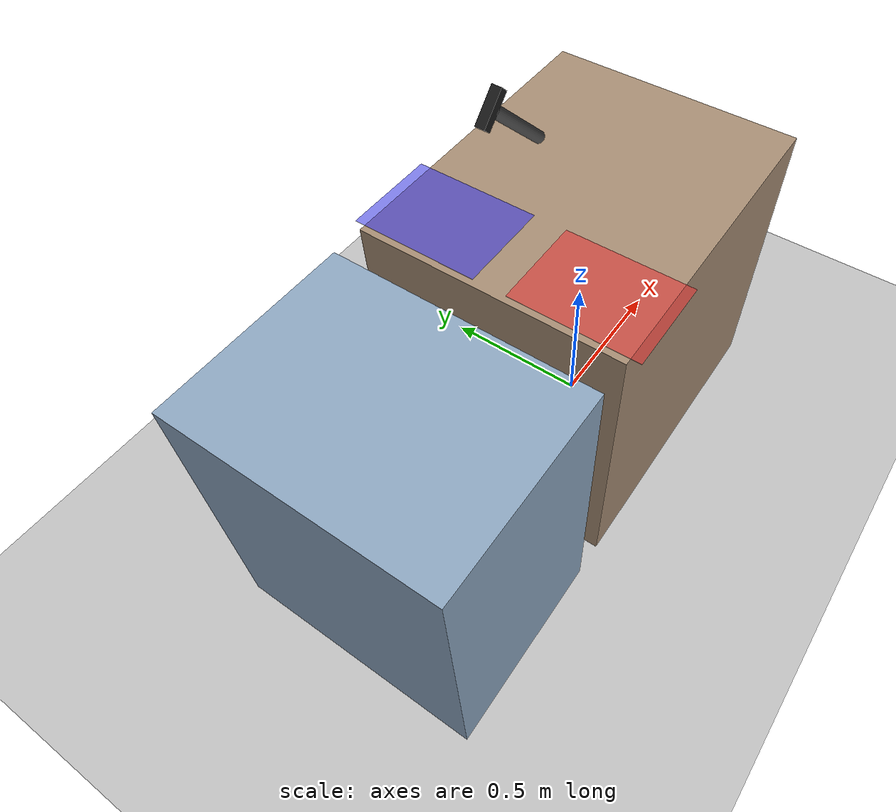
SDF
<?xml version="1.0"?>
<sdf version="1.6">
  <world name="vision_sorting">

    <!-- ── Physics & System Plugins ─────────────────────────────────────── -->
    <plugin filename="gz-sim-physics-system"
            name="gz::sim::systems::Physics"/>
    <plugin filename="gz-sim-scene-broadcaster-system"
            name="gz::sim::systems::SceneBroadcaster"/>
    <plugin filename="gz-sim-user-commands-system"
            name="gz::sim::systems::UserCommands"/>
    <plugin filename="gz-sim-contact-system"
            name="gz::sim::systems::Contact"/>
    <plugin filename="gz-sim-sensors-system"
            name="gz::sim::systems::Sensors">
      <render_engine>ogre2</render_engine>
    </plugin>

    <!-- ── Lighting ─────────────────────────────────────────────────────── -->
    <light type="directional" name="sun">
      <cast_shadows>false</cast_shadows>
      <pose>3.5 3.5 12 0 0 0</pose>
      <diffuse>0.95 0.95 0.95 1</diffuse>
      <specular>0.3 0.3 0.3 1</specular>
      <direction>-0.3 0.2 -1</direction>
      <attenuation>
        <range>1000</range>
        <constant>0.9</constant>
        <linear>0.01</linear>
        <quadratic>0.001</quadratic>
      </attenuation>
    </light>

    <light type="directional" name="ambient_fill">
      <cast_shadows>false</cast_shadows>
      <pose>3.5 3.5 10 0 0 0</pose>
      <diffuse>0.5 0.5 0.5 1</diffuse>
      <specular>0.1 0.1 0.1 1</specular>
      <direction>0.3 -0.2 -1</direction>
    </light>

    <!-- ── Ground Plane ──────────────────────────────────────────────────── -->
    <model name="ground_plane">
      <static>true</static>
      <link name="link">
        <collision name="collision">
          <geometry>
            <plane><normal>0 0 1</normal></plane>
          </geometry>
        </collision>
        <visual name="visual">
          <geometry>
            <plane>
              <normal>0 0 1</normal>
              <size>20 20</size>
            </plane>
          </geometry>
          <material>
            <ambient>0.75 0.75 0.75 1</ambient>
            <diffuse>0.75 0.75 0.75 1</diffuse>
          </material>
        </visual>
      </link>
    </model>

    <!-- ── Table 1: Arm Mounting Table ───────────────────────────────────── -->
    <!-- Spans x: -0.5 to +0.5, y: -0.4 to +0.4, surface at z=0.95        -->
    <model name="table_1">
      <static>true</static>
      <pose>0 0 0.475 0 0 0</pose>
      <link name="link">
        <collision name="collision">
          <geometry>
            <box><size>1.0 0.8 0.95</size></box>
          </geometry>
        </collision>
        <visual name="visual">
          <geometry>
            <box><size>1.0 0.8 0.95</size></box>
          </geometry>
          <material>
            <ambient>0.65 0.55 0.45 1</ambient>
            <diffuse>0.65 0.55 0.45 1</diffuse>
            <specular>0.1 0.1 0.1 1</specular>
          </material>
        </visual>
      </link>
    </model>

    <!-- ── Table 2: Pickup Table (random objects spawn here) ─────────────── -->
    <!-- Spans x: -0.60 to -1.20, y: -0.40 to +0.40, surface at z=0.95    -->
    <model name="table_2">
      <static>true</static>
      <pose>-0.9 0 0.475 0 0 0</pose>
      <link name="link">
        <collision name="collision">
          <geometry>
            <box><size>0.6 0.8 0.95</size></box>
          </geometry>
        </collision>
        <visual name="visual">
          <geometry>
            <box><size>0.6 0.8 0.95</size></box>
          </geometry>
          <material>
            <ambient>0.55 0.65 0.75 1</ambient>
            <diffuse>0.55 0.65 0.75 1</diffuse>
            <specular>0.1 0.1 0.1 1</specular>
          </material>
        </visual>
      </link>
    </model>

    <!-- ── Sort Zone Markers (visual only, no collision) ─────────────────── -->

    <!-- RED ZONE: arm's right (-Y side), two rows of 3+2 positions         -->
    <!-- Row 1: x=-0.28, y=-0.12/-0.24/-0.36  Row 2: x=-0.40, y=-0.12/-0.24 -->
    <model name="red_zone_marker">
      <static>true</static>
      <pose>-0.34 -0.24 0.951 0 0 0</pose>
      <link name="link">
        <visual name="visual">
          <geometry>
            <box><size>0.28 0.38 0.002</size></box>
          </geometry>
          <material>
            <ambient>0.9 0.2 0.2 0.6</ambient>
            <diffuse>0.9 0.2 0.2 0.6</diffuse>
          </material>
        </visual>
      </link>
    </model>

    <!-- BLUE ZONE: arm's left (+Y side), mirror of red zone -->
    <model name="blue_zone_marker">
      <static>true</static>
      <pose>-0.34 0.24 0.951 0 0 0</pose>
      <link name="link">
        <visual name="visual">
          <geometry>
            <box><size>0.28 0.38 0.002</size></box>
          </geometry>
          <material>
            <ambient>0.2 0.2 0.9 0.6</ambient>
            <diffuse>0.2 0.2 0.9 0.6</diffuse>
          </material>
        </visual>
      </link>
    </model>

    <!-- ── D415 Camera (pole-mounted at edge of Table 1) ─────────────────── -->
    <!-- Position: x=-0.45, y=0.0, z=1.45                                   -->
    <!-- Orientation: yaw=π (facing -X toward Table 2), pitch=45° down       -->
    <model name="d415_camera">
      <static>true</static>
      <pose>-0.45 0.0 1.45 0 0.785 3.14159</pose>

      <link name="d415_camera_link">
        <!-- Camera body visual -->
        <visual name="body">
          <pose>0 0 0 0 0 0</pose>
          <geometry>
            <box><size>0.09 0.025 0.025</size></box>
          </geometry>
          <material>
            <ambient>0.1 0.1 0.1 1</ambient>
            <diffuse>0.1 0.1 0.1 1</diffuse>
          </material>
        </visual>

        <!-- Camera pole -->
        <visual name="pole">
          <pose>0 0 -0.135 0 0 0</pose>
          <geometry>
            <cylinder>
              <radius>0.015</radius>
              <length>0.25</length>
            </cylinder>
          </geometry>
          <material>
            <ambient>0.3 0.3 0.3 1</ambient>
            <diffuse>0.3 0.3 0.3 1</diffuse>
          </material>
        </visual>

        <!-- D415 RGBD Sensor -->
        <sensor name="d415" type="rgbd_camera">
          <pose>0 0 0 0 0 0</pose>
          <camera>
            <!-- D415 horizontal FOV: 69.4° = 1.2112 rad -->
            <horizontal_fov>1.2112</horizontal_fov>
            <image>
              <width>640</width>
              <height>480</height>
              <format>RGB_INT8</format>
            </image>
            <clip>
              <near>0.3</near>
              <far>10.0</far>
            </clip>
            <depth_camera>
              <clip>
                <near>0.3</near>
                <far>5.0</far>
              </clip>
            </depth_camera>
            <noise>
              <type>gaussian</type>
              <mean>0.0</mean>
              <stddev>0.007</stddev>
            </noise>
          </camera>
          <always_on>true</always_on>
          <update_rate>30</update_rate>
          <visualize>false</visualize>
          <topic>d415</topic>
          <gz_frame_id>d415_camera_link</gz_frame_id>
        </sensor>
      </link>
    </model>

  </world>
</sdf>
